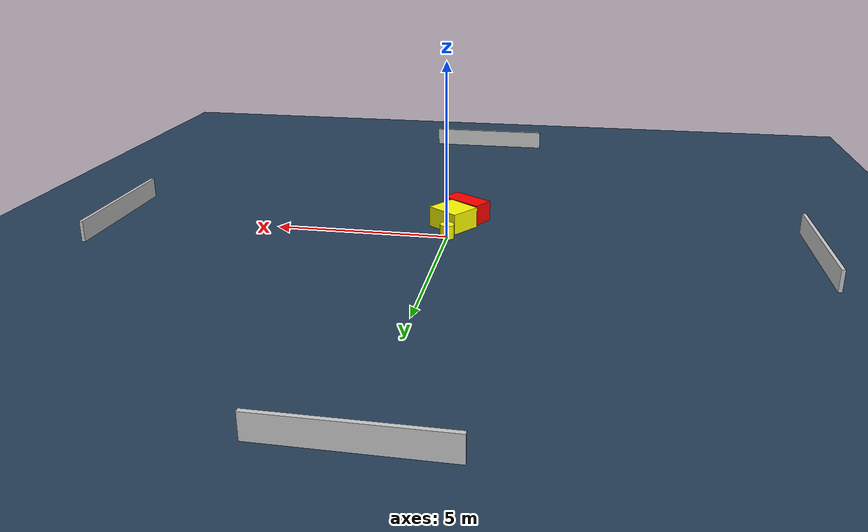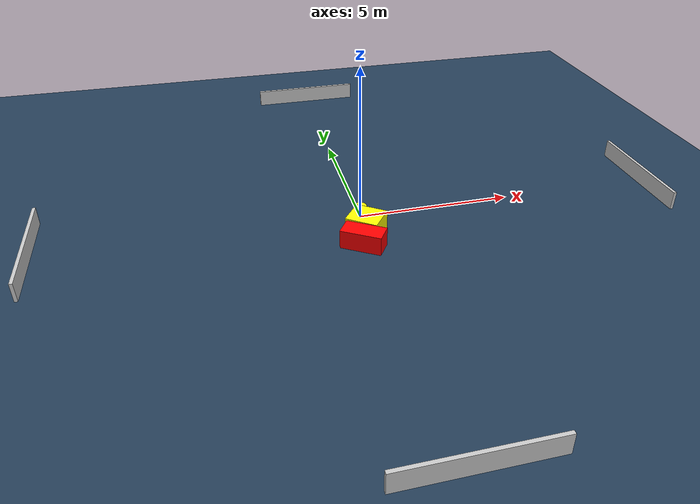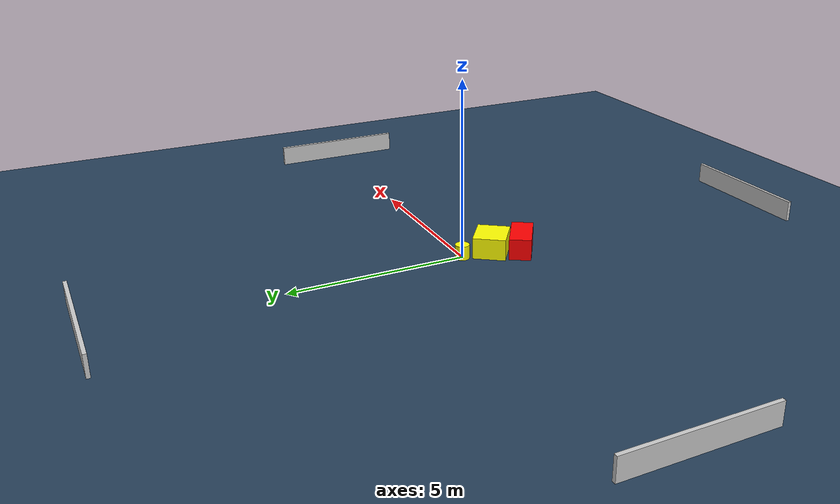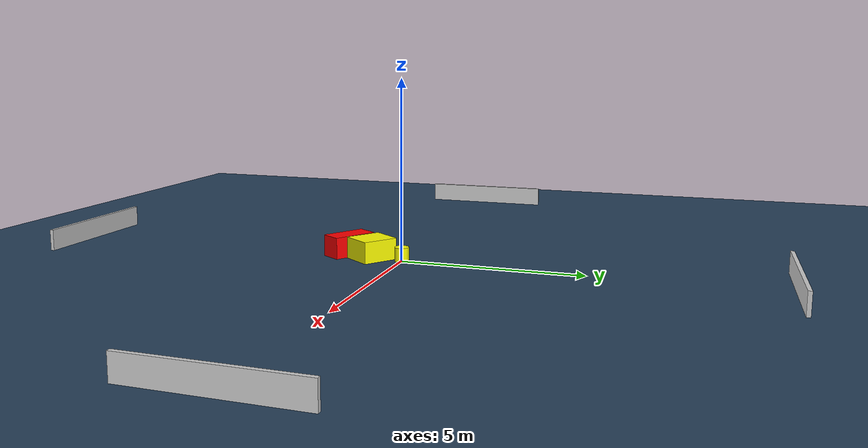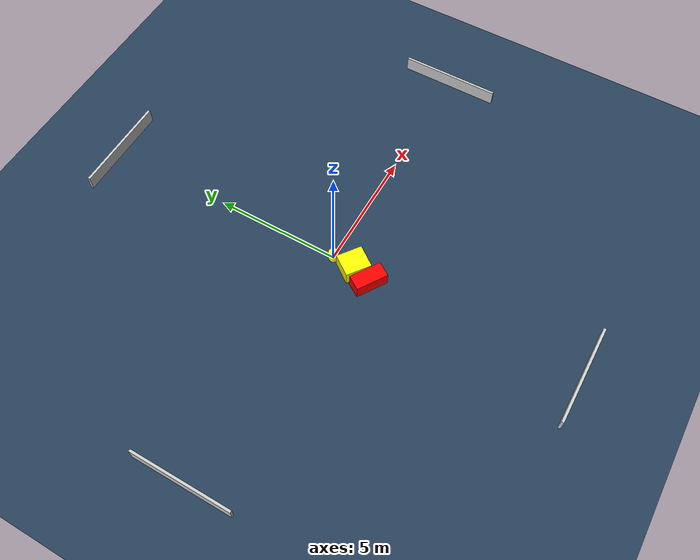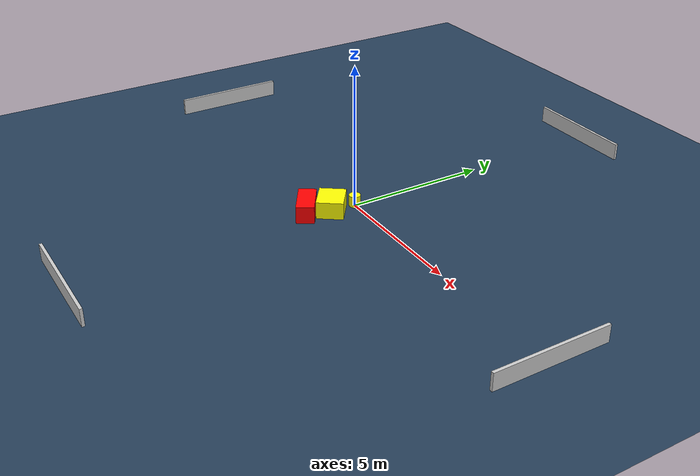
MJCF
<?xml version="1.0" ?>
<mujoco model="generated_environment">
  <option timestep="0.01" integrator="RK4" cone="elliptic"/>
  <default>
    <geom density="1"/>
  </default>
  <asset>
    <texture builtin="gradient" height="3072" name="skybox" rgb1="0.3 0.5 0.7" rgb2="0 0 0" type="skybox" width="512"/>
    <texture builtin="checker" height="300" name="groundplane" rgb1="0.2 0.3 0.4" rgb2="0.1 0.2 0.3" type="2d" width="300"/>
    <material name="groundplane" reflectance="0.2" texrepeat="5 5" texture="groundplane"/>
  </asset>
  <worldbody>
    <light dir="0 0 -1" directional="true" pos="0 0 1.5"/>
    <geom condim="3" friction="0.5 0.005 0.001" material="groundplane" name="floor" pos="0 0 0" size="0 0 0.05" type="plane"/>
    <body name="walls">
      <geom name="wall_1" condim="4" pos="-10.0 0.0 0.3" rgba="0.800000011920929 0.800000011920929 0.800000011920929 1.0" size="0.05 2.0 0.3" type="box"/>
      <geom name="wall_2" condim="4" pos="10.0 0.0 0.3" rgba="0.800000011920929 0.800000011920929 0.800000011920929 1.0" size="0.05 2.0 0.3" type="box"/>
      <geom name="wall_3" condim="4" pos="0.0 -10.0 0.3" rgba="0.800000011920929 0.800000011920929 0.800000011920929 1.0" size="2.0 0.05 0.3" type="box"/>
      <geom name="wall_4" condim="4" pos="0.0 10.0 0.3" rgba="0.800000011920929 0.800000011920929 0.800000011920929 1.0" size="2.0 0.05 0.3" type="box"/>
    </body>
    <body name="robot">
      <joint name="joint_x" type="slide" pos="0 0 0" axis="1 0 0"/>
      <joint name="joint_y" type="slide" pos="0 0 0" axis="0 1 0"/>
      <geom name="robot" type="cylinder" pos="0.0 0.0 0.2" size="0.2 0.2 0.0" mass="5.0" friction="1.0 0.005 0.0001" condim="4" rgba="1.0 1.0 0.0 1.0"/>
    </body>
    <body name="obstacle_1_movable">
      <geom name="obstacle_1_movable" condim="4" pos="-0.03404829604956446 -0.8912796808840482 0.3" euler="0 0 323.7027445245559" friction="0.0 0.005 0.001" rgba="1.0 1.0 0.0 1.0" size="0.5169305291000503 0.4586665638154536 0.3" type="box" mass="0.1"/>
      <joint type="free"/>
    </body>
    <body name="obstacle_2_static">
      <geom name="obstacle_2_static" condim="4" pos="-0.3228889908079967 -1.6784796751760316 0.3" euler="0 0 327.3558963258348" friction="0.0 0.005 0.001" rgba="1.0 0.0 0.0 1.0" size="0.6456015198808915 0.307522548873964 0.3" type="box"/>
    </body>
  </worldbody>
  <actuator>
    <motor name="actuator_x" joint="joint_x" gear="1" ctrlrange="-1 1"/>
    <motor name="actuator_y" joint="joint_y" gear="1" ctrlrange="-1 1"/>
  </actuator>
</mujoco>
